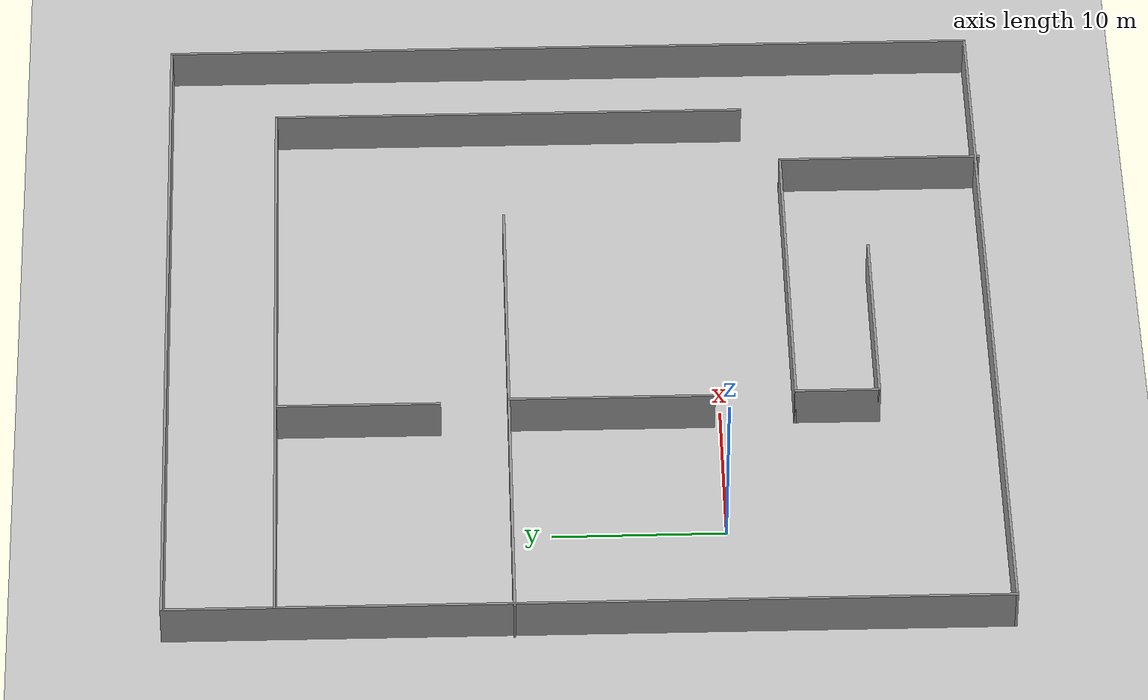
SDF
<sdf version="1.4">
 <world name="default">
  <light name="sun" type="directional">
   <pose>0 0 10 0 -0 0</pose>
   <diffuse>0.8 0.8 0.8 1</diffuse>
   <specular>0.2 0.2 0.2 1</specular>
   <attenuation>
    <range>1000</range>
    <constant>0.9</constant>
    <linear>0.01</linear>
    <quadratic>0.001</quadratic>
   </attenuation>
   <direction>-0.5 0.1 -0.9</direction>
  </light>
  <model name="ground_plane">
   <static>1</static>
   <link name="link">
    <collision name="collision">
     <geometry><plane><normal>0 0 1</normal><size>100 100</size></plane></geometry>
     <surface><friction><ode><mu>100</mu><mu2>50</mu2></ode></friction></surface>
    </collision>
    <visual name="visual">
     <cast_shadows>0</cast_shadows>
     <geometry><plane><normal>0 0 1</normal><size>100 100</size></plane></geometry>
     <material>
      <script><uri>file://media/materials/scripts/gazebo.material</uri><name>Gazebo/Grey</name></script>
     </material>
    </visual>
   </link>
  </model>
  <physics name="default_physics" default="0" type="ode">
   <max_step_size>0.001</max_step_size>
   <real_time_factor>1</real_time_factor>
   <real_time_update_rate>1000</real_time_update_rate>
   <gravity>0 0 -9.8</gravity>
  </physics>
  <scene><ambient>0.4 0.4 0.4 1</ambient><background>0.7 0.7 0.7 1</background><shadows>1</shadows></scene>
  <spherical_coordinates>
   <surface_model>EARTH_WGS84</surface_model>
   <latitude_deg>0</latitude_deg>
   <longitude_deg>0</longitude_deg>
   <elevation>0</elevation>
   <heading_deg>0</heading_deg>
  </spherical_coordinates>
  <model name="Maze_0">
   <pose>16 8 0 0 -0 0</pose>
   <link name="Wall_0">
    <collision name="Wall_0_Collision">
     <geometry><box><size>47.75 0.15 2.5</size></box></geometry>
     <pose>0 0 1.25 0 -0 0</pose>
    </collision>
    <visual name="Wall_0_Visual">
     <pose>0 0 1.25 0 -0 0</pose>
     <geometry><box><size>47.75 0.15 2.5</size></box></geometry>
     <material>
      <script><uri>file://media/materials/scripts/gazebo.material</uri><name>Gazebo/Grey</name></script>
      <ambient>1 1 1 1</ambient>
     </material>
    </visual>
    <pose>0.066124 24.1356 0 0 -0 0</pose>
   </link>
   <link name="Wall_1">
    <collision name="Wall_1_Collision">
     <geometry><box><size>48.25 0.15 2.5</size></box></geometry>
     <pose>0 0 1.25 0 -0 0</pose>
    </collision>
    <visual name="Wall_1_Visual">
     <pose>0 0 1.25 0 -0 0</pose>
     <geometry><box><size>48.25 0.15 2.5</size></box></geometry>
     <material>
      <script><uri>file://media/materials/scripts/gazebo.material</uri><name>Gazebo/Grey</name></script>
      <ambient>1 1 1 1</ambient>
     </material>
    </visual>
    <pose>23.8661 0.085623 0 0 0 -1.5708</pose>
   </link>
   <link name="Wall_10">
    <collision name="Wall_10_Collision">
     <geometry><box><size>32.75 0.15 2.5</size></box></geometry>
     <pose>0 0 1.25 0 -0 0</pose>
    </collision>
    <visual name="Wall_10_Visual">
     <pose>0 0 1.25 0 -0 0</pose>
     <geometry><box><size>32.75 0.15 2.5</size></box></geometry>
     <material>
      <script><uri>file://media/materials/scripts/gazebo.material</uri><name>Gazebo/Grey</name></script>
      <ambient>1 1 1 1</ambient>
     </material>
    </visual>
    <pose>-7.56613 4.29812 0 0 -0 0</pose>
   </link>
   <link name="Wall_12">
    <collision name="Wall_12_Collision">
     <geometry><box><size>12 0.15 2.5</size></box></geometry>
     <pose>0 0 1.25 0 -0 0</pose>
    </collision>
    <visual name="Wall_12_Visual">
     <pose>0 0 1.25 0 -0 0</pose>
     <geometry><box><size>12 0.15 2.5</size></box></geometry>
     <material>
      <script><uri>file://media/materials/scripts/gazebo.material</uri><name>Gazebo/Grey</name></script>
      <ambient>1 1 1 1</ambient>
     </material>
    </visual>
    <pose>-7.07038 -1.62688 0 0 0 -1.5708</pose>
   </link>
   <link name="Wall_14">
    <collision name="Wall_14_Collision">
     <geometry><box><size>12 0.15 2.5</size></box></geometry>
     <pose>0 0 1.25 0 -0 0</pose>
    </collision>
    <visual name="Wall_14_Visual">
     <pose>0 0 1.25 0 -0 0</pose>
     <geometry><box><size>12 0.15 2.5</size></box></geometry>
     <material>
      <script><uri>file://media/materials/scripts/gazebo.material</uri><name>Gazebo/Grey</name></script>
      <ambient>1 1 1 1</ambient>
     </material>
    </visual>
    <pose>13.2961 -18.2106 0 0 -0 1.5708</pose>
   </link>
   <link name="Wall_15">
    <collision name="Wall_15_Collision">
     <geometry><box><size>20.25 0.15 2.5</size></box></geometry>
     <pose>0 0 1.25 0 -0 0</pose>
    </collision>
    <visual name="Wall_15_Visual">
     <pose>0 0 1.25 0 -0 0</pose>
     <geometry><box><size>20.25 0.15 2.5</size></box></geometry>
     <material>
      <script><uri>file://media/materials/scripts/gazebo.material</uri><name>Gazebo/Grey</name></script>
      <ambient>1 1 1 1</ambient>
     </material>
    </visual>
    <pose>3.24612 -12.2856 0 0 -0 3.14159</pose>
   </link>
   <link name="Wall_16">
    <collision name="Wall_16_Collision">
     <geometry><box><size>5 0.15 2.5</size></box></geometry>
     <pose>0 0 1.25 0 -0 0</pose>
    </collision>
    <visual name="Wall_16_Visual">
     <pose>0 0 1.25 0 -0 0</pose>
     <geometry><box><size>5 0.15 2.5</size></box></geometry>
     <material>
      <script><uri>file://media/materials/scripts/gazebo.material</uri><name>Gazebo/Grey</name></script>
      <ambient>1 1 1 1</ambient>
     </material>
    </visual>
    <pose>-6.80388 -14.7106 0 0 0 -1.5708</pose>
   </link>
   <link name="Wall_17">
    <collision name="Wall_17_Collision">
     <geometry><box><size>12.5 0.15 2.5</size></box></geometry>
     <pose>0 0 1.25 0 -0 0</pose>
    </collision>
    <visual name="Wall_17_Visual">
     <pose>0 0 1.25 0 -0 0</pose>
     <geometry><box><size>12.5 0.15 2.5</size></box></geometry>
     <material>
      <script><uri>file://media/materials/scripts/gazebo.material</uri><name>Gazebo/Grey</name></script>
      <ambient>1 1 1 1</ambient>
     </material>
    </visual>
    <pose>-0.628876 -17.1356 0 0 -0 0</pose>
   </link>
   <link name="Wall_2">
    <collision name="Wall_2_Collision">
     <geometry><box><size>47.75 0.15 2.5</size></box></geometry>
     <pose>0 0 1.25 0 -0 0</pose>
    </collision>
    <visual name="Wall_2_Visual">
     <pose>0 0 1.25 0 -0 0</pose>
     <geometry><box><size>47.75 0.15 2.5</size></box></geometry>
     <material>
      <script><uri>file://media/materials/scripts/gazebo.material</uri><name>Gazebo/Grey</name></script>
      <ambient>1 1 1 1</ambient>
     </material>
    </visual>
    <pose>0.066124 -23.9644 0 0 -0 3.14159</pose>
   </link>
   <link name="Wall_3">
    <collision name="Wall_3_Collision">
     <geometry><box><size>48.25 0.15 2.5</size></box></geometry>
     <pose>0 0 1.25 0 -0 0</pose>
    </collision>
    <visual name="Wall_3_Visual">
     <pose>0 0 1.25 0 -0 0</pose>
     <geometry><box><size>48.25 0.15 2.5</size></box></geometry>
     <material>
      <script><uri>file://media/materials/scripts/gazebo.material</uri><name>Gazebo/Grey</name></script>
      <ambient>1 1 1 1</ambient>
     </material>
    </visual>
    <pose>-23.7339 0.085623 0 0 -0 1.5708</pose>
   </link>
   <link name="Wall_5">
    <collision name="Wall_5_Collision">
     <geometry><box><size>41.75 0.15 2.5</size></box></geometry>
     <pose>0 0 1.25 0 -0 0</pose>
    </collision>
    <visual name="Wall_5_Visual">
     <pose>0 0 1.25 0 -0 0</pose>
     <geometry><box><size>41.75 0.15 2.5</size></box></geometry>
     <material>
      <script><uri>file://media/materials/scripts/gazebo.material</uri><name>Gazebo/Grey</name></script>
      <ambient>1 1 1 1</ambient>
     </material>
    </visual>
    <pose>-2.93388 17.7876 0 0 -0 0</pose>
   </link>
   <link name="Wall_6">
    <collision name="Wall_6_Collision">
     <geometry><box><size>28 0.15 2.5</size></box></geometry>
     <pose>0 0 1.25 0 -0 0</pose>
    </collision>
    <visual name="Wall_6_Visual">
     <pose>0 0 1.25 0 -0 0</pose>
     <geometry><box><size>28 0.15 2.5</size></box></geometry>
     <material>
      <script><uri>file://media/materials/scripts/gazebo.material</uri><name>Gazebo/Grey</name></script>
      <ambient>1 1 1 1</ambient>
     </material>
    </visual>
    <pose>17.8661 3.86262 0 0 0 -1.5708</pose>
   </link>
   <link name="Wall_8">
    <collision name="Wall_8_Collision">
     <geometry><box><size>9.5 0.15 2.5</size></box></geometry>
     <pose>0 0 1.25 0 -0 0</pose>
    </collision>
    <visual name="Wall_8_Visual">
     <pose>0 0 1.25 0 -0 0</pose>
     <geometry><box><size>9.5 0.15 2.5</size></box></geometry>
     <material>
      <script><uri>file://media/materials/scripts/gazebo.material</uri><name>Gazebo/Grey</name></script>
      <ambient>1 1 1 1</ambient>
     </material>
    </visual>
    <pose>-7.33488 12.9804 0 0 0 -1.5708</pose>
   </link>
   <static>1</static>
  </model>
 </world>
</sdf>
